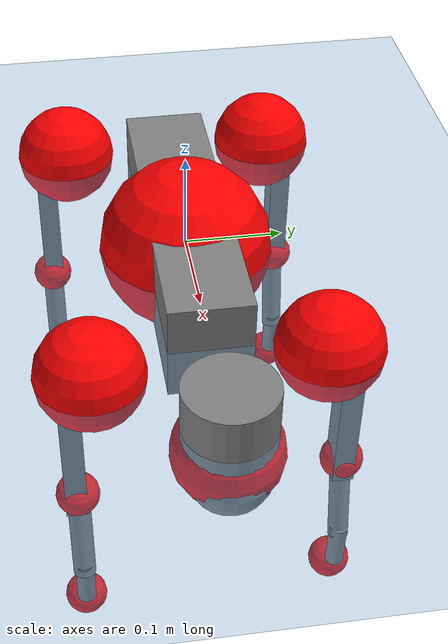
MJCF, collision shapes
<mujoco model="go2">
  <compiler angle="radian" assetdir="assets" balanceinertia="true" inertiafromgeom="false"/>

  <option timestep="0.005" density="1.2" viscosity="2e-05"/>

  <size nkey="1"/>

  <visual>
    <quality shadowsize="8192"/>
    <map shadowclip="0.5"/>
  </visual>

  <default>
    <default class="/">
      <geom contype="0" conaffinity="0" group="1" solref="-1000 -80"/>
      <site size="0.01 0.005 0.005" group="5"/>
      <general forcelimited="true" biastype="affine" gainprm="20" biasprm="0 -20 -0.5"/>
      <default class="go2">
        <joint armature="0.01" damping="0.01" frictionloss="0.2"/>
        <geom condim="1" margin="0.001"/>
        <default class="visual">
          <geom type="mesh" group="2"/>
        </default>
        <default class="collision">
          <geom group="3"/>
          <default class="foot">
            <geom size="0.022 0 0" condim="6" priority="1" friction="0.8 0.02 0.01" solimp="0.015 1 0.022"/>
          </default>
        </default>
        <default class="reward_collision_sphere">
          <geom group="5" rgba="1 0 0 1"/>
        </default>
      </default>
    </default>
  </default>

  <asset>
    <texture type="skybox" colorspace="auto" name="//unnamed_texture_0" builtin="gradient" rgb1="0.95 0.95 0.95" rgb2="0.95 0.95 0.95" width="100" height="600"/>
    <texture type="2d" colorspace="auto" name="texplane" builtin="checker" rgb1="0.345 0.575 0.748" rgb2="0.345 0.575 0.748" markrgb="1 1 1" width="512" height="512"/>
    <material name="MatPlane" class="/" texture="texplane" texuniform="true" texrepeat="2 2" specular="0.9"/>
    <material name="metal" class="/" rgba="0.9 0.95 0.95 1"/>
    <material name="black" class="/" rgba="0 0 0 1"/>
    <material name="white" class="/"/>
    <material name="gray" class="/" rgba="0.671705 0.692426 0.77427 1"/>
    <mesh name="base_0" class="/" file="base_0.obj"/>
    <mesh name="base_1" class="/" file="base_1.obj"/>
    <mesh name="base_2" class="/" file="base_2.obj"/>
    <mesh name="base_3" class="/" file="base_3.obj"/>
    <mesh name="base_4" class="/" file="base_4.obj"/>
    <mesh name="hip_0" class="/" file="hip_0.obj"/>
    <mesh name="hip_1" class="/" file="hip_1.obj"/>
    <mesh name="thigh_0" class="/" file="thigh_0.obj"/>
    <mesh name="thigh_1" class="/" file="thigh_1.obj"/>
    <mesh name="thigh_mirror_0" class="/" file="thigh_mirror_0.obj"/>
    <mesh name="thigh_mirror_1" class="/" file="thigh_mirror_1.obj"/>
    <mesh name="calf_0" class="/" file="calf_0.obj"/>
    <mesh name="calf_1" class="/" file="calf_1.obj"/>
    <mesh name="calf_mirror_0" class="/" file="calf_mirror_0.obj"/>
    <mesh name="calf_mirror_1" class="/" file="calf_mirror_1.obj"/>
    <mesh name="foot" class="/" file="foot.obj"/>
  </asset>

  <worldbody>
    <geom name="floor" class="/" size="100 100 0.125" type="plane" group="0" material="MatPlane"/>
    <light name="toplight_shadow" class="/" pos="0 0 5" dir="0.0990148 0.0990148 -0.990148" type="directional" ambient="0.04 0.04 0.04" diffuse="0.55 0.55 0.55" specular="0.12 0.12 0.12"/>
    <light name="toplight_fill" class="/" pos="0 0 5" dir="0.0990148 0.0990148 -0.990148" type="directional" castshadow="false" ambient="0.04 0.04 0.04" diffuse="0.3 0.3 0.3" specular="0.08 0.08 0.08"/>
    <body name="trunk" childclass="go2" pos="-0.000281846 0.000184869 -0.00221953" quat="1 -0.000297981 0.000370091 9.40323e-05">
      <inertial pos="0.0188312 -5.00154e-06 -0.00247055" quat="-0.000778344 0.713425 -0.000809582 0.700731" mass="4.7706" diaginertia="0.0741721 0.0784252 0.00654881"/>
      <joint name="//unnamed_joint_0" type="free" armature="0" damping="0" frictionloss="0"/>
      <geom name="//unnamed_geom_1" class="visual" material="black" mesh="base_0"/>
      <geom name="//unnamed_geom_2" class="visual" material="black" mesh="base_1"/>
      <geom name="//unnamed_geom_3" class="visual" material="black" mesh="base_2"/>
      <geom name="//unnamed_geom_4" class="visual" material="white" mesh="base_3"/>
      <geom name="//unnamed_geom_5" class="visual" material="gray" mesh="base_4"/>
      <geom name="trunk_1" class="collision" size="0.167422 0.0416108 0.050734" type="box"/>
      <geom name="trunk_2" class="collision" size="0.0445035 0.0400531" pos="0.266076 0 0.00771955" type="cylinder"/>
      <geom name="trunk_3" class="collision" size="0.0418333" pos="0.273545 0 -0.0463173"/>
      <geom name="//unnamed_geom_9" class="reward_collision_sphere" size="0.089007"/>
      <geom name="//unnamed_geom_10" class="reward_collision_sphere" size="0.0534042" pos="0.261408 0 -0.034738"/>
      <site name="imu" pos="-0.0117519 -0.0137925 0.0454614" size="0.0089007"/>
      <camera name="track" pos="0 -1.92931 0" quat="0.707107 0.707107 0 0" mode="trackcom"/>
      <camera name="ego_camera" pos="0.291283 0 0.034738" quat="-0.5 -0.5 0.5 0.5"/>
      <body name="FL_hip" pos="0.180481 0.042288 0.0039619" quat="1 9.41949e-05 -0.000598333 -0.000404847">
        <inertial pos="-0.0060875 0.00310459 -0.00295697" quat="0.497576 0.500118 0.504343 0.497934" mass="0.455225" diaginertia="0.00061064 0.000468153 0.000132538"/>
        <joint name="FL_hip_joint" pos="0 0 0" axis="0.999984 0.00549471 0.00141332" range="-1.10331 1.05129" armature="0.0101411" damping="0.0200527" frictionloss="0.16576"/>
        <geom name="//unnamed_geom_11" class="visual" material="metal" mesh="hip_0"/>
        <geom name="//unnamed_geom_12" class="visual" material="gray" mesh="hip_1"/>
        <geom name="//unnamed_geom_13" class="collision" size="0.0409432 0.0178014" pos="0 0.0771725 0" quat="0.707107 0.707107 0 0" type="cylinder"/>
        <geom name="//unnamed_geom_14" class="reward_collision_sphere" size="0.0534042" pos="0 0.0675259 0"/>
        <body name="FL_thigh" pos="0.000884347 0.090921 0.00340469" quat="1 0.000400259 7.85492e-05 -0.000411615">
          <inertial pos="-0.00261346 -0.0214164 -0.0279197" quat="0.832145 0.0830399 -0.0210117 0.547903" mass="0.820763" diaginertia="0.00418869 0.00493668 0.000239825"/>
          <joint name="FL_thigh_joint" pos="0 0 0" axis="0.014037 0.9999 -0.00183243" range="-1.62203 3.54865" armature="0.00964382" damping="0.000978943" frictionloss="0.174096"/>
          <geom name="//unnamed_geom_15" class="visual" material="metal" mesh="thigh_0"/>
          <geom name="//unnamed_geom_16" class="visual" material="gray" mesh="thigh_1"/>
          <geom name="//unnamed_geom_17" class="collision" size="0.0947925 0.0109034 0.0151312" pos="0 0 -0.0822132" quat="0.707107 0 0.707107 0" type="box"/>
          <body name="FL_calf" pos="-0.00379998 0.00181597 -0.162642" quat="1 -2.59507e-05 -7.58546e-05 -0.000142497">
            <inertial pos="0.00688705 -0.000418961 -0.108672" quat="0.710722 0.00163 -0.00307347 0.703465" mass="0.160659" diaginertia="0.00105456 0.00123305 1.40559e-05"/>
            <joint name="FL_calf_joint" pos="0 0 0" axis="-0.00238705 0.999986 -0.00465567" stiffness="0.000791631" range="-2.72765 -0.850896" armature="0.00774869" damping="0.013641" frictionloss="0.158439"/>
            <geom name="//unnamed_geom_18" class="visual" material="gray" mesh="calf_0"/>
            <geom name="//unnamed_geom_19" class="visual" material="black" mesh="calf_1"/>
            <geom name="FL_calf0" class="collision" size="0.0106808 0.0534042" pos="0.0074688 0 -0.0463173" quat="0.994493 0 -0.104807 0" type="cylinder"/>
            <geom name="//unnamed_geom_21" class="collision" size="0.00979077 0.0289273" pos="0.018672 0 -0.114249" quat="0.999688 0 0.0249974 0" type="cylinder"/>
            <geom name="//unnamed_geom_22" class="visual" pos="0 0 -0.164426" quat="1 0 0 0" material="black" mesh="foot"/>
            <geom name="FL_foot" class="foot" size="0.0175162" pos="-0.0018672 0 -0.164426"/>
            <geom name="//unnamed_geom_24" class="reward_collision_sphere" size="0.0222517"/>
            <geom name="//unnamed_geom_25" class="reward_collision_sphere" size="0.0222517" pos="-0.0018672 0 -0.164426"/>
            <site name="FL_foot" class="foot" pos="-0.0018672 0 -0.164426" size="0.0089007"/>
          </body>
        </body>
      </body>
      <body name="FR_hip" pos="0.184236 -0.0477815 0.00186431" quat="1 5.22284e-06 -0.000822421 0.000493936">
        <inertial pos="-0.00517856 -0.00217275 -0.00124059" quat="0.498275 0.505416 0.4993 0.496966" mass="0.486356" diaginertia="0.000627262 0.000475959 0.000131434"/>
        <joint name="FR_hip_joint" pos="0 0 0" axis="0.999989 -0.00448344 -0.00164337" stiffness="0.0145653" range="-1.01411 1.04099" armature="0.00923027" damping="0.0235971" frictionloss="0.155467"/>
        <geom name="//unnamed_geom_26" class="visual" pos="0 1.67873e-09 7.20043e-08" quat="4.63268e-05 1 0 0" material="metal" mesh="hip_0"/>
        <geom name="//unnamed_geom_27" class="visual" pos="0 2.72143e-09 -1.78094e-07" quat="4.63268e-05 1 0 0" material="gray" mesh="hip_1"/>
        <geom name="//unnamed_geom_28" class="collision" size="0.0409432 0.0178014" pos="0 -0.0771725 0" quat="0.707107 0.707107 0 0" type="cylinder"/>
        <geom name="//unnamed_geom_29" class="reward_collision_sphere" size="0.0534042" pos="0 -0.0675259 0"/>
        <body name="FR_thigh" pos="-0.000362053 -0.089967 0.00109456" quat="0.999999 0.000141094 -0.00116684 -0.000246354">
          <inertial pos="-0.00464131 0.0213187 -0.0251809" quat="0.551697 -0.0194989 0.0854722 0.829424" mass="0.77626" diaginertia="0.00415694 0.00466659 0.000241556"/>
          <joint name="FR_thigh_joint" pos="0 0 0" axis="-0.00524459 -0.999985 0.00156017" range="-3.51005 1.56203" armature="0.00854994" damping="0.000134103" frictionloss="0.165207"/>
          <geom name="//unnamed_geom_30" class="visual" material="metal" mesh="thigh_mirror_0"/>
          <geom name="//unnamed_geom_31" class="visual" material="gray" mesh="thigh_mirror_1"/>
          <geom name="//unnamed_geom_32" class="collision" size="0.0947925 0.0109034 0.0151312" pos="0 0 -0.0822132" quat="0.707107 0 0.707107 0" type="box"/>
          <body name="FR_calf" pos="0.000258523 0.00235951 -0.161249" quat="1 -0.000227605 0.000323248 -0.00039949">
            <inertial pos="0.00348811 -0.000809976 -0.109698" quat="0.705912 -0.00212397 -0.00783281 0.708253" mass="0.173378" diaginertia="0.00109607 0.00124083 1.4781e-05"/>
            <joint name="FR_calf_joint" pos="0 0 0" axis="-0.00512804 -0.999944 0.00921023" range="0.87687 2.69268" armature="0.00892794" damping="0.00696139" frictionloss="0.186604"/>
            <geom name="//unnamed_geom_33" class="visual" material="gray" mesh="calf_mirror_0"/>
            <geom name="//unnamed_geom_34" class="visual" material="black" mesh="calf_mirror_1"/>
            <geom name="FR_calf0" class="collision" size="0.0115709 0.0534042" pos="0.009336 0 -0.0463173" quat="0.995004 0 -0.0998334 0" type="cylinder"/>
            <geom name="//unnamed_geom_36" class="collision" size="0.00979077 0.0289273" pos="0.018672 0 -0.114249" quat="0.999688 0 0.0249974 0" type="cylinder"/>
            <geom name="//unnamed_geom_37" class="visual" pos="0 0 -0.164426" quat="1 0 0 0" material="black" mesh="foot"/>
            <geom name="FR_foot" class="foot" size="0.0217117" pos="-0.0018672 0 -0.164426"/>
            <geom name="//unnamed_geom_39" class="reward_collision_sphere" size="0.0222517"/>
            <geom name="//unnamed_geom_40" class="reward_collision_sphere" size="0.0222517" pos="-0.0018672 0 -0.164426"/>
            <site name="FR_foot" class="foot" pos="-0.0018672 0 -0.164426" size="0.0089007"/>
          </body>
        </body>
      </body>
      <body name="RL_hip" pos="-0.182123 0.0468579 0.000395686" quat="1 4.09099e-05 6.86219e-05 3.99301e-05">
        <inertial pos="0.0022231 0.000797093 0.00104345" quat="0.507464 0.501222 0.498004 0.493203" mass="0.485693" diaginertia="0.000646506 0.000513932 0.000127197"/>
        <joint name="RL_hip_joint" pos="0 0 0" axis="-0.999863 -0.00117974 0.0165403" range="-1.0185 0.990433" armature="0.00907779" damping="0" frictionloss="0.202904"/>
        <geom name="//unnamed_geom_41" class="visual" pos="-1.40818e-09 0 -2.76036e-07" quat="4.63268e-05 0 1 0" material="metal" mesh="hip_0"/>
        <geom name="//unnamed_geom_42" class="visual" pos="-2.28283e-09 0 -2.44805e-07" quat="4.63268e-05 0 1 0" material="gray" mesh="hip_1"/>
        <geom name="//unnamed_geom_43" class="collision" size="0.0409432 0.0178014" pos="0 0.0771725 0" quat="0.707107 0.707107 0 0" type="cylinder"/>
        <geom name="//unnamed_geom_44" class="reward_collision_sphere" size="0.0534042" pos="0 0.0675259 0"/>
        <body name="RL_thigh" pos="0.000505724 0.0905252 -0.000304641" quat="0.999999 -0.00121651 -0.000650013 -0.000444817">
          <inertial pos="-0.00576539 -0.0236262 -0.0251036" quat="0.831838 0.0732072 -0.02534 0.549585" mass="0.799378" diaginertia="0.00419442 0.00473055 0.000250305"/>
          <joint name="RL_thigh_joint" pos="0 0 0" axis="0.0086839 0.999958 0.00289689" stiffness="0.01484" range="-0.519373 4.55101" armature="0.00883253" damping="0" frictionloss="0.179211"/>
          <geom name="//unnamed_geom_45" class="visual" material="metal" mesh="thigh_0"/>
          <geom name="//unnamed_geom_46" class="visual" material="gray" mesh="thigh_1"/>
          <geom name="//unnamed_geom_47" class="collision" size="0.0947925 0.0109034 0.0151312" pos="0 0 -0.0822132" quat="0.707107 0 0.707107 0" type="box"/>
          <body name="RL_calf" pos="0.00174184 -0.00130048 -0.163917" quat="1 -0.000484748 0.000625726 -0.000155286">
            <inertial pos="0.00772428 -0.00264403 -0.111392" quat="0.710888 0.00138855 -0.00423175 0.703291" mass="0.165296" diaginertia="0.00100926 0.0012093 1.40622e-05"/>
            <joint name="RL_calf_joint" pos="0 0 0" axis="0.00466247 0.999945 0.00936887" range="-2.72704 -0.806847" armature="0.00864746" damping="0.0138937" frictionloss="0.203027"/>
            <geom name="//unnamed_geom_48" class="visual" material="gray" mesh="calf_0"/>
            <geom name="//unnamed_geom_49" class="visual" material="black" mesh="calf_1"/>
            <geom name="RL_calf0" class="collision" size="0.0115709 0.0534042" pos="0.009336 0 -0.0463173" quat="0.995004 0 -0.0998334 0" type="cylinder"/>
            <geom name="//unnamed_geom_51" class="collision" size="0.00979077 0.0289273" pos="0.018672 0 -0.114249" quat="0.999688 0 0.0249974 0" type="cylinder"/>
            <geom name="//unnamed_geom_52" class="visual" pos="0 0 -0.164426" quat="1 0 0 0" material="black" mesh="foot"/>
            <geom name="RL_foot" class="foot" size="0.018541" pos="-0.0018672 0 -0.164426"/>
            <geom name="//unnamed_geom_54" class="reward_collision_sphere" size="0.0222517"/>
            <geom name="//unnamed_geom_55" class="reward_collision_sphere" size="0.0222517" pos="-0.0018672 0 -0.164426"/>
            <site name="RL_foot" class="foot" pos="-0.0018672 0 -0.164426" size="0.0089007"/>
          </body>
        </body>
      </body>
      <body name="RR_hip" pos="-0.180932 -0.0426816 0.00197586" quat="1 -0.000332259 0.000156137 0.000194098">
        <inertial pos="0.00619402 0.00115742 -0.00269225" quat="0.499713 0.499571 0.498838 0.501874" mass="0.452376" diaginertia="0.000627258 0.000465565 0.000127268"/>
        <joint name="RR_hip_joint" pos="0 0 0" axis="-0.999832 -0.00793279 -0.0165201" range="-1.07299 1.07537" armature="0.00843483" damping="0" frictionloss="0.201041"/>
        <geom name="//unnamed_geom_56" class="visual" pos="1.40926e-09 1.67873e-09 -3.48041e-07" quat="2.14617e-09 4.63268e-05 4.63268e-05 -1" material="metal" mesh="hip_0"/>
        <geom name="//unnamed_geom_57" class="visual" pos="2.28018e-09 2.72143e-09 -6.67108e-08" quat="2.14617e-09 4.63268e-05 4.63268e-05 -1" material="gray" mesh="hip_1"/>
        <geom name="//unnamed_geom_58" class="collision" size="0.0409432 0.0178014" pos="0 -0.0771725 0" quat="0.707107 0.707107 0 0" type="cylinder"/>
        <geom name="//unnamed_geom_59" class="reward_collision_sphere" size="0.0534042" pos="0 -0.0675259 0"/>
        <body name="RR_thigh" pos="0.00030169 -0.0926243 0.000459523" quat="1 8.16941e-05 -6.06833e-05 -0.000164261">
          <inertial pos="-0.00342724 0.0204356 -0.0225198" quat="0.550058 -0.0219708 0.0931579 0.829623" mass="0.818385" diaginertia="0.00432587 0.00499858 0.000245597"/>
          <joint name="RR_thigh_joint" pos="0 0 0" axis="-0.000965344 -0.999959 0.00905808" stiffness="0.00606996" range="-4.48426 0.516427" armature="0.00844306" damping="0.0209496" frictionloss="0.197661"/>
          <geom name="//unnamed_geom_60" class="visual" material="metal" mesh="thigh_mirror_0"/>
          <geom name="//unnamed_geom_61" class="visual" material="gray" mesh="thigh_mirror_1"/>
          <geom name="//unnamed_geom_62" class="collision" size="0.0947925 0.0109034 0.0151312" pos="0 0 -0.0822132" quat="0.707107 0 0.707107 0" type="box"/>
          <body name="RR_calf" pos="0.00250457 -0.00172286 -0.164725" quat="0.999999 -0.000577317 -0.000871358 0.000204867">
            <inertial pos="0.00854676 0.00148749 -0.108996" quat="0.70376 -0.00487877 0.00227698 0.710417" mass="0.162962" diaginertia="0.00103201 0.00114795 1.38569e-05"/>
            <joint name="RR_calf_joint" pos="0 0 0" axis="-0.000503687 -0.999998 0.00203746" range="0.868842 2.74074" armature="0.00928958" damping="0.014889" frictionloss="0.180822"/>
            <geom name="//unnamed_geom_63" class="visual" material="gray" mesh="calf_mirror_0"/>
            <geom name="//unnamed_geom_64" class="visual" material="black" mesh="calf_mirror_1"/>
            <geom name="RR_calf0" class="collision" size="0.0115709 0.0534042" pos="0.009336 0 -0.0463173" quat="0.995004 0 -0.0998334 0" type="cylinder"/>
            <geom name="//unnamed_geom_66" class="collision" size="0.00979077 0.0289273" pos="0.018672 0 -0.114249" quat="0.999688 0 0.0249974 0" type="cylinder"/>
            <geom name="//unnamed_geom_67" class="visual" pos="0 0 -0.164426" quat="1 0 0 0" material="black" mesh="foot"/>
            <geom name="RR_foot" class="foot" size="0.0203022" pos="-0.0018672 0 -0.164426"/>
            <geom name="//unnamed_geom_69" class="reward_collision_sphere" size="0.0222517"/>
            <geom name="//unnamed_geom_70" class="reward_collision_sphere" size="0.0222517" pos="-0.0018672 0 -0.164426"/>
            <site name="RR_foot" class="foot" pos="-0.0018672 0 -0.164426" size="0.0089007"/>
          </body>
        </body>
      </body>
    </body>
  </worldbody>

  <contact>
    <pair class="/" geom1="floor" geom2="FL_foot" name="//unnamed_contact_0"/>
    <pair class="/" geom1="floor" geom2="FR_foot" name="//unnamed_contact_1"/>
    <pair class="/" geom1="floor" geom2="RL_foot" name="//unnamed_contact_2"/>
    <pair class="/" geom1="floor" geom2="RR_foot" name="//unnamed_contact_3"/>
  </contact>

  <actuator>
    <general name="FL_hip" class="/" joint="FL_hip_joint" forcerange="-18.9362 18.9362" gainprm="17.9282" biasprm="0 -17.9282 -0.476267"/>
    <general name="FL_thigh" class="/" joint="FL_thigh_joint" forcerange="-21.8314 21.8314" gainprm="17.9282" biasprm="0 -17.9282 -0.476267"/>
    <general name="FL_calf" class="/" joint="FL_calf_joint" forcerange="-43.0931 43.0931" gainprm="17.9282" biasprm="0 -17.9282 -0.476267"/>
    <general name="FR_hip" class="/" joint="FR_hip_joint" forcerange="-19.4371 19.4371" gainprm="17.9282" biasprm="0 -17.9282 -0.476267"/>
    <general name="FR_thigh" class="/" joint="FR_thigh_joint" forcerange="-23.0593 23.0593" gainprm="17.9282" biasprm="0 -17.9282 -0.476267"/>
    <general name="FR_calf" class="/" joint="FR_calf_joint" forcerange="-36.0503 36.0503" gainprm="17.9282" biasprm="0 -17.9282 -0.476267"/>
    <general name="RL_hip" class="/" joint="RL_hip_joint" forcerange="-22.9919 22.9919" gainprm="17.9282" biasprm="0 -17.9282 -0.476267"/>
    <general name="RL_thigh" class="/" joint="RL_thigh_joint" forcerange="-21.1181 21.1181" gainprm="17.9282" biasprm="0 -17.9282 -0.476267"/>
    <general name="RL_calf" class="/" joint="RL_calf_joint" forcerange="-36.1111 36.1111" gainprm="17.9282" biasprm="0 -17.9282 -0.476267"/>
    <general name="RR_hip" class="/" joint="RR_hip_joint" forcerange="-21.6699 21.6699" gainprm="17.9282" biasprm="0 -17.9282 -0.476267"/>
    <general name="RR_thigh" class="/" joint="RR_thigh_joint" forcerange="-20.4765 20.4765" gainprm="17.9282" biasprm="0 -17.9282 -0.476267"/>
    <general name="RR_calf" class="/" joint="RR_calf_joint" forcerange="-39.2535 39.2535" gainprm="17.9282" biasprm="0 -17.9282 -0.476267"/>
  </actuator>

  <sensor>
    <gyro site="imu" name="imu_angular_velocity"/>
    <velocimeter site="imu" name="imu_linear_velocity"/>
    <framelinvel objtype="site" objname="FL_foot" name="FL_foot_global_linear_velocity"/>
    <framelinvel objtype="site" objname="FR_foot" name="FR_foot_global_linear_velocity"/>
    <framelinvel objtype="site" objname="RL_foot" name="RL_foot_global_linear_velocity"/>
    <framelinvel objtype="site" objname="RR_foot" name="RR_foot_global_linear_velocity"/>
  </sensor>

  <keyframe>
    <key name="home" qpos="0 0 0.325 1 0 0 0 0.1 0.8 -1.5 -0.1 -0.8 1.5 -0.1 0.8 -1.5 0.1 -0.8 1.5"/>
  </keyframe>
</mujoco>
